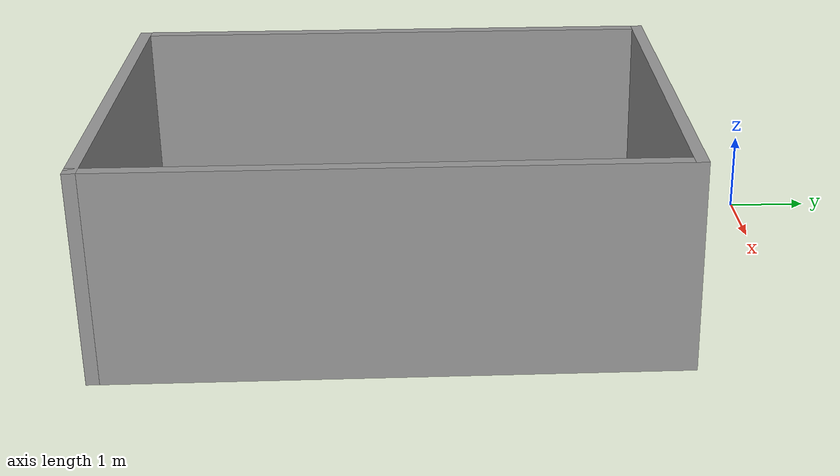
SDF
<?xml version='1.0'?>
<sdf version='1.6'>
  <model name='bedroom_external_wall'>
    <pose frame=''>2.055 -4.68 0 0 -0 0</pose>
    <link name='Wall_0'>
      <collision name='Wall_0_Collision'>
        <geometry>
          <box>
            <size>6.75 0.15 2.5</size>
          </box>
        </geometry>
        <pose frame=''>0 0 1.25 0 -0 0</pose>
      </collision>
      <visual name='Wall_0_Visual'>
        <pose frame=''>0 0 1.25 0 -0 0</pose>
        <geometry>
          <box>
            <size>6.75 0.15 2.5</size>
          </box>
        </geometry>
        <material>
          <script>
            <uri>file://media/materials/scripts/gazebo.material</uri>
            <name>Gazebo/Grey</name>
          </script>
          <ambient>1 1 1 1</ambient>
        </material>
        <meta>
          <layer>0</layer>
        </meta>
      </visual>
      <pose frame=''>-2.425 0 0 0 -0 1.5708</pose>
    </link>
    <link name='Wall_2'>
      <collision name='Wall_2_Collision'>
        <geometry>
          <box>
            <size>5 0.15 2.5</size>
          </box>
        </geometry>
        <pose frame=''>0 0 1.25 0 -0 0</pose>
      </collision>
      <visual name='Wall_2_Visual'>
        <pose frame=''>0 0 1.25 0 -0 0</pose>
        <geometry>
          <box>
            <size>5 0.15 2.5</size>
          </box>
        </geometry>
        <material>
          <script>
            <uri>file://media/materials/scripts/gazebo.material</uri>
            <name>Gazebo/Grey</name>
          </script>
          <ambient>1 1 1 1</ambient>
        </material>
        <meta>
          <layer>0</layer>
        </meta>
      </visual>
      <pose frame=''>0 -3.3 0 0 -0 0</pose>
    </link>
    <link name='Wall_6'>
      <collision name='Wall_6_Collision'>
        <geometry>
          <box>
            <size>5 0.15 2.5</size>
          </box>
        </geometry>
        <pose frame=''>0 0 1.25 0 -0 0</pose>
      </collision>
      <visual name='Wall_6_Visual'>
        <pose frame=''>0 0 1.25 0 -0 0</pose>
        <geometry>
          <box>
            <size>5 0.15 2.5</size>
          </box>
        </geometry>
        <material>
          <script>
            <uri>file://media/materials/scripts/gazebo.material</uri>
            <name>Gazebo/Grey</name>
          </script>
          <ambient>1 1 1 1</ambient>
        </material>
        <meta>
          <layer>0</layer>
        </meta>
      </visual>
      <pose frame=''>0 3.3 0 0 -0 0</pose>
    </link>
    <link name='Wall_7'>
      <collision name='Wall_7_Collision'>
        <geometry>
          <box>
            <size>6.75 0.15 2.5</size>
          </box>
        </geometry>
        <pose frame=''>0 0 1.25 0 -0 0</pose>
      </collision>
      <visual name='Wall_7_Visual'>
        <pose frame=''>0 0 1.25 0 -0 0</pose>
        <geometry>
          <box>
            <size>6.75 0.15 2.5</size>
          </box>
        </geometry>
        <material>
          <script>
            <uri>file://media/materials/scripts/gazebo.material</uri>
            <name>Gazebo/Grey</name>
          </script>
          <ambient>1 1 1 1</ambient>
        </material>
        <meta>
          <layer>0</layer>
        </meta>
      </visual>
      <pose frame=''>2.425 0 0 0 -0 -1.5708</pose>
    </link>
    <static>1</static>
  </model>
</sdf>
